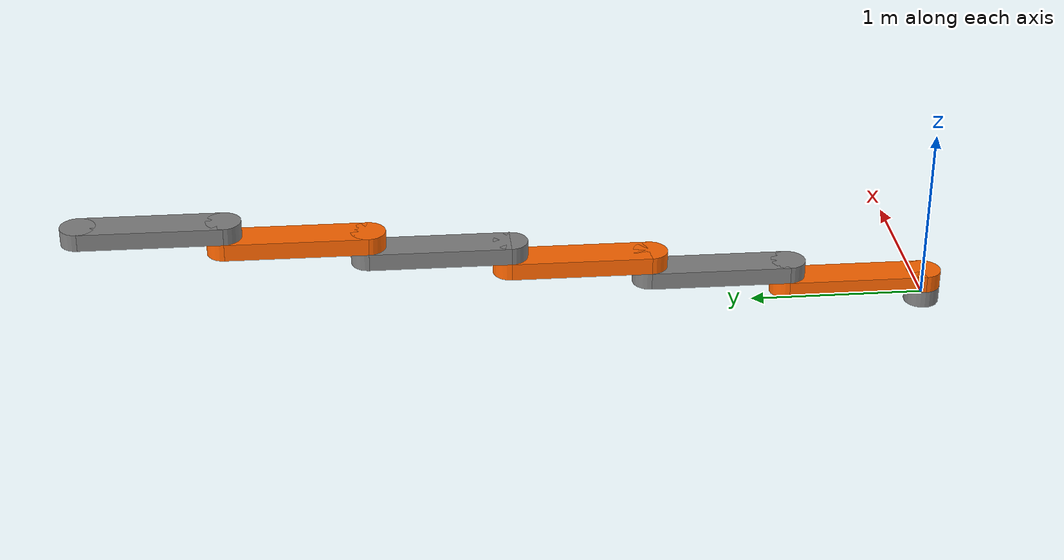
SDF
<?xml version="1.0"?>
<sdf version="1.7">
  <model name="6dofPlanar">
    <!-- Manipulatator base -->
    <link name="6dofPlanarBase">
      <pose>0 0 0 0 0 0</pose>
      <visual name="6dofPlanarBaseVisual">
        <geometry>
          <cylinder>
            <radius>0.1</radius>
            <length>0.1</length>
          </cylinder>
        </geometry>
        <material>
          <ambient>0.5 0.5 0.5 1</ambient>
          <diffuse>0.5 0.5 0.5 1</diffuse>
          <specular>0.5 0.5 0.5 1</specular>
          <emissive>0.5 0.5 0.5 1</emissive>
        </material>
      </visual>
      <collision name="6dofPlanarBaseCollision">
        <pose>0 0 0 0 0 0</pose>
        <geometry>
          <cylinder>
            <radius>0.1</radius>
            <length>0.1</length>
          </cylinder>
        </geometry>
      </collision>
    </link>

    <!-- First link  -->
    <link name="6dofPlanarLink1">
      <pose>0 0 0.1 0 0 0</pose>
      <visual name="6dofPlanarLink1Visual1">
        <pose>0 0 0 0 0 0</pose>
        <geometry>
          <cylinder>
            <radius>0.1</radius>
            <length>0.1</length>
          </cylinder>
        </geometry>
        <material>
          <ambient>1 0.4 0 1</ambient>
          <diffuse>1 0.4 0 1</diffuse>
          <specular>1 0.4 0 1</specular>
          <emissive>1 0.4 0 1</emissive>
        </material>
      </visual>
      <visual name="6dofPlanarLink1Visual2">
        <pose>0 0.4 0 0 0 0</pose>
        <geometry>
          <box>
            <size>0.2 0.8 0.1</size>
          </box>
        </geometry>
        <material>
          <ambient>1 0.4 0 1</ambient>
          <diffuse>1 0.4 0 1</diffuse>
          <specular>1 0.4 0 1</specular>
          <emissive>1 0.4 0 1</emissive>
        </material>
      </visual>
      <visual name="6dofPlanarLink1Visual3">
        <pose>0 0.8 0 0 0 0</pose>
        <geometry>
          <cylinder>
            <radius>0.1</radius>
            <length>0.1</length>
          </cylinder>
        </geometry>
        <material>
          <ambient>1 0.4 0 1</ambient>
          <diffuse>1 0.4 0 1</diffuse>
          <specular>1 0.4 0 1</specular>
          <emissive>1 0.4 0 1</emissive>
        </material>
      </visual>
      <collision name="6dofPlanarLink1Collision1">
        <pose>0 0 0 0 0 0</pose>
        <geometry>
          <cylinder>
            <radius>0.1</radius>
            <length>0.1</length>
          </cylinder>
        </geometry>
      </collision>
      <collision name="6dofPlanarLink1Collision2">
        <pose>0 0.4 0 0 0 0</pose>
        <geometry>
          <box>
            <size>0.2 0.8 0.1</size>
          </box>
        </geometry>
      </collision>
      <collision name="6dofPlanarLink1Collision3">
        <pose>0 0.8 0 0 0 0</pose>
        <geometry>
          <cylinder>
            <radius>0.1</radius>
            <length>0.1</length>
          </cylinder>
        </geometry>
      </collision>
    </link>

    <!-- First joint  -->
    <joint name="6dofPlanarJoint1" type="revolute">
      <parent>6dofPlanarBase</parent>
      <child>6dofPlanarLink1</child>
      <axis>
        <xyz>0 0 1</xyz>
        <limit>
          <lower>-3.14159</lower>
          <upper>3.14159</upper>
        </limit>
      </axis>
    </joint>

    <!-- Second link  -->
    <link name="6dofPlanarLink2">
      <pose>0 0.8 0.2 0 0 0</pose>
      <visual name="6dofPlanarLink2Visual1">
        <pose>0 0 0 0 0 0</pose>
        <geometry>
          <cylinder>
            <radius>0.1</radius>
            <length>0.1</length>
          </cylinder>
        </geometry>
        <material>
          <ambient>0.5 0.5 0.5 1</ambient>
          <diffuse>0.5 0.5 0.5 1</diffuse>
          <specular>0.5 0.5 0.5 1</specular>
          <emissive>0.5 0.5 0.5 1</emissive>
        </material>
      </visual>
      <visual name="6dofPlanarLink2Visual2">
        <pose>0 0.4 0 0 0 0</pose>
        <geometry>
          <box>
            <size>0.2 0.8 0.1</size>
          </box>
        </geometry>
        <material>
          <ambient>0.5 0.5 0.5 1</ambient>
          <diffuse>0.5 0.5 0.5 1</diffuse>
          <specular>0.5 0.5 0.5 1</specular>
          <emissive>0.5 0.5 0.5 1</emissive>
        </material>
      </visual>
      <visual name="6dofPlanarLink2Visual3">
        <pose>0 0.8 0 0 0 0</pose>
        <geometry>
          <cylinder>
            <radius>0.1</radius>
            <length>0.1</length>
          </cylinder>
        </geometry>
        <material>
          <ambient>0.5 0.5 0.5 1</ambient>
          <diffuse>0.5 0.5 0.5 1</diffuse>
          <specular>0.5 0.5 0.5 1</specular>
          <emissive>0.5 0.5 0.5 1</emissive>
        </material>
      </visual>
      <collision name="6dofPlanarLink2Collision1">
        <pose>0 0 0 0 0 0</pose>
        <geometry>
          <cylinder>
            <radius>0.1</radius>
            <length>0.1</length>
          </cylinder>
        </geometry>
      </collision>
      <collision name="6dofPlanarLink2Collision2">
        <pose>0 0.4 0 0 0 0</pose>
        <geometry>
          <box>
            <size>0.2 0.8 0.1</size>
          </box>
        </geometry>
      </collision>
      <collision name="6dofPlanarLink2Collision3">
        <pose>0 0.8 0 0 0 0</pose>
        <geometry>
          <cylinder>
            <radius>0.1</radius>
            <length>0.1</length>
          </cylinder>
        </geometry>
      </collision>
    </link>

    <!-- Second joint  -->
    <joint name="6dofPlanarJoint2" type="revolute">
      <parent>6dofPlanarLink1</parent>
      <child>6dofPlanarLink2</child>
      <axis>
        <xyz>0 0 1</xyz>
        <limit>
          <lower>-3.14159</lower>
          <upper>3.14159</upper>
        </limit>
      </axis>
    </joint>

    <!-- Third link  -->
    <link name="6dofPlanarLink3">
      <pose>0 1.6 0.3 0 0 0</pose>
      <visual name="6dofPlanarLink3Visual1">
        <pose>0 0 0 0 0 0</pose>
        <geometry>
          <cylinder>
            <radius>0.1</radius>
            <length>0.1</length>
          </cylinder>
        </geometry>
        <material>
          <ambient>1 0.4 0 1</ambient>
          <diffuse>1 0.4 0 1</diffuse>
          <specular>1 0.4 0 1</specular>
          <emissive>1 0.4 0 1</emissive>
        </material>
      </visual>
      <visual name="6dofPlanarLink3Visual2">
        <pose>0 0.4 0 0 0 0</pose>
        <geometry>
          <box>
            <size>0.2 0.8 0.1</size>
          </box>
        </geometry>
        <material>
          <ambient>1 0.4 0 1</ambient>
          <diffuse>1 0.4 0 1</diffuse>
          <specular>1 0.4 0 1</specular>
          <emissive>1 0.4 0 1</emissive>
        </material>
      </visual>
      <visual name="6dofPlanarLink3Visual3">
        <pose>0 0.8 0 0 0 0</pose>
        <geometry>
          <cylinder>
            <radius>0.1</radius>
            <length>0.1</length>
          </cylinder>
        </geometry>
        <material>
          <ambient>1 0.4 0 1</ambient>
          <diffuse>1 0.4 0 1</diffuse>
          <specular>1 0.4 0 1</specular>
          <emissive>1 0.4 0 1</emissive>
        </material>
      </visual>
      <collision name="6dofPlanarLink3Collision1">
        <pose>0 0 0 0 0 0</pose>
        <geometry>
          <cylinder>
            <radius>0.1</radius>
            <length>0.1</length>
          </cylinder>
        </geometry>
      </collision>
      <collision name="6dofPlanarLink3Collision2">
        <pose>0 0.4 0 0 0 0</pose>
        <geometry>
          <box>
            <size>0.2 0.8 0.1</size>
          </box>
        </geometry>
      </collision>
      <collision name="6dofPlanarLink3Collision3">
        <pose>0 0.8 0 0 0 0</pose>
        <geometry>
          <cylinder>
            <radius>0.1</radius>
            <length>0.1</length>
          </cylinder>
        </geometry>
      </collision>
    </link>

    <!-- Third joint  -->
    <joint name="6dofPlanarJoint3" type="revolute">
      <parent>6dofPlanarLink2</parent>
      <child>6dofPlanarLink3</child>
      <axis>
        <xyz>0 0 1</xyz>
        <limit>
          <lower>-3.14159</lower>
          <upper>3.14159</upper>
        </limit>
      </axis>
    </joint>

    <!-- Fourth link  -->
    <link name="6dofPlanarLink4">
      <pose>0 2.4 0.4 0 0 0</pose>
      <visual name="6dofPlanarLink4Visual1">
        <pose>0 0 0 0 0 0</pose>
        <geometry>
          <cylinder>
            <radius>0.1</radius>
            <length>0.1</length>
          </cylinder>
        </geometry>
        <material>
          <ambient>0.5 0.5 0.5 1</ambient>
          <diffuse>0.5 0.5 0.5 1</diffuse>
          <specular>0.5 0.5 0.5 1</specular>
          <emissive>0.5 0.5 0.5 1</emissive>
        </material>
      </visual>
      <visual name="6dofPlanarLink4Visual2">
        <pose>0 0.4 0 0 0 0</pose>
        <geometry>
          <box>
            <size>0.2 0.8 0.1</size>
          </box>
        </geometry>
        <material>
          <ambient>0.5 0.5 0.5 1</ambient>
          <diffuse>0.5 0.5 0.5 1</diffuse>
          <specular>0.5 0.5 0.5 1</specular>
          <emissive>0.5 0.5 0.5 1</emissive>
        </material>
      </visual>
      <visual name="6dofPlanarLink4Visual3">
        <pose>0 0.8 0 0 0 0</pose>
        <geometry>
          <cylinder>
            <radius>0.1</radius>
            <length>0.1</length>
          </cylinder>
        </geometry>
        <material>
          <ambient>0.5 0.5 0.5 1</ambient>
          <diffuse>0.5 0.5 0.5 1</diffuse>
          <specular>0.5 0.5 0.5 1</specular>
          <emissive>0.5 0.5 0.5 1</emissive>
        </material>
      </visual>
      <collision name="6dofPlanarLink4Collision1">
        <pose>0 0 0 0 0 0</pose>
        <geometry>
          <cylinder>
            <radius>0.1</radius>
            <length>0.1</length>
          </cylinder>
        </geometry>
      </collision>
      <collision name="6dofPlanarLink4Collision2">
        <pose>0 0.4 0 0 0 0</pose>
        <geometry>
          <box>
            <size>0.2 0.8 0.1</size>
          </box>
        </geometry>
      </collision>
      <collision name="6dofPlanarLink4Collision3">
        <pose>0 0.8 0 0 0 0</pose>
        <geometry>
          <cylinder>
            <radius>0.1</radius>
            <length>0.1</length>
          </cylinder>
        </geometry>
      </collision>
    </link>

    <!-- Fourth joint  -->
    <joint name="6dofPlanarJoint4" type="revolute">
      <parent>6dofPlanarLink3</parent>
      <child>6dofPlanarLink4</child>
      <axis>
        <xyz>0 0 1</xyz>
        <limit>
          <lower>-3.14159</lower>
          <upper>3.14159</upper>
        </limit>
      </axis>
    </joint>

    <!-- Fifth link  -->
    <link name="6dofPlanarLink5">
      <pose>0 3.2 0.5 0 0 0</pose>
      <visual name="6dofPlanarLink5Visual1">
        <pose>0 0 0 0 0 0</pose>
        <geometry>
          <cylinder>
            <radius>0.1</radius>
            <length>0.1</length>
          </cylinder>
        </geometry>
        <material>
          <ambient>1 0.4 0 1</ambient>
          <diffuse>1 0.4 0 1</diffuse>
          <specular>1 0.4 0 1</specular>
          <emissive>1 0.4 0 1</emissive>
        </material>
      </visual>
      <visual name="6dofPlanarLink5Visual2">
        <pose>0 0.4 0 0 0 0</pose>
        <geometry>
          <box>
            <size>0.2 0.8 0.1</size>
          </box>
        </geometry>
        <material>
          <ambient>1 0.4 0 1</ambient>
          <diffuse>1 0.4 0 1</diffuse>
          <specular>1 0.4 0 1</specular>
          <emissive>1 0.4 0 1</emissive>
        </material>
      </visual>
      <visual name="6dofPlanarLink5Visual3">
        <pose>0 0.8 0 0 0 0</pose>
        <geometry>
          <cylinder>
            <radius>0.1</radius>
            <length>0.1</length>
          </cylinder>
        </geometry>
        <material>
          <ambient>1 0.4 0 1</ambient>
          <diffuse>1 0.4 0 1</diffuse>
          <specular>1 0.4 0 1</specular>
          <emissive>1 0.4 0 1</emissive>
        </material>
      </visual>
      <collision name="6dofPlanarLink5Collision1">
        <pose>0 0 0 0 0 0</pose>
        <geometry>
          <cylinder>
            <radius>0.1</radius>
            <length>0.1</length>
          </cylinder>
        </geometry>
      </collision>
      <collision name="6dofPlanarLink5Collision2">
        <pose>0 0.4 0 0 0 0</pose>
        <geometry>
          <box>
            <size>0.2 0.8 0.1</size>
          </box>
        </geometry>
      </collision>
      <collision name="6dofPlanarLink5Collision3">
        <pose>0 0.8 0 0 0 0</pose>
        <geometry>
          <cylinder>
            <radius>0.1</radius>
            <length>0.1</length>
          </cylinder>
        </geometry>
      </collision>
    </link>

    <!-- Fifth joint  -->
    <joint name="6dofPlanarJoint5" type="revolute">
      <parent>6dofPlanarLink4</parent>
      <child>6dofPlanarLink5</child>
      <axis>
        <xyz>0 0 1</xyz>
        <limit>
          <lower>-3.14159</lower>
          <upper>3.14159</upper>
        </limit>
      </axis>
    </joint>

    <!-- Sixth link  -->
    <link name="6dofPlanarLink6">
      <pose>0 4.0 0.6 0 0 0</pose>
      <visual name="6dofPlanarLink6Visual1">
        <pose>0 0 0 0 0 0</pose>
        <geometry>
          <cylinder>
            <radius>0.1</radius>
            <length>0.1</length>
          </cylinder>
        </geometry>
        <material>
          <ambient>0.5 0.5 0.5 1</ambient>
          <diffuse>0.5 0.5 0.5 1</diffuse>
          <specular>0.5 0.5 0.5 1</specular>
          <emissive>0.5 0.5 0.5 1</emissive>
        </material>
      </visual>
      <visual name="6dofPlanarLink6Visual2">
        <pose>0 0.4 0 0 0 0</pose>
        <geometry>
          <box>
            <size>0.2 0.8 0.1</size>
          </box>
        </geometry>
        <material>
          <ambient>0.5 0.5 0.5 1</ambient>
          <diffuse>0.5 0.5 0.5 1</diffuse>
          <specular>0.5 0.5 0.5 1</specular>
          <emissive>0.5 0.5 0.5 1</emissive>
        </material>
      </visual>
      <visual name="6dofPlanarLink6Visual3">
        <pose>0 0.8 0 0 0 0</pose>
        <geometry>
          <cylinder>
            <radius>0.1</radius>
            <length>0.1</length>
          </cylinder>
        </geometry>
        <material>
          <ambient>0.5 0.5 0.5 1</ambient>
          <diffuse>0.5 0.5 0.5 1</diffuse>
          <specular>0.5 0.5 0.5 1</specular>
          <emissive>0.5 0.5 0.5 1</emissive>
        </material>
      </visual>
      <collision name="6dofPlanarLink6Collision1">
        <pose>0 0 0 0 0 0</pose>
        <geometry>
          <cylinder>
            <radius>0.1</radius>
            <length>0.1</length>
          </cylinder>
        </geometry>
      </collision>
      <collision name="6dofPlanarLink6Collision2">
        <pose>0 0.4 0 0 0 0</pose>
        <geometry>
          <box>
            <size>0.2 0.8 0.1</size>
          </box>
        </geometry>
      </collision>
      <collision name="6dofPlanarLink6Collision3">
        <pose>0 0.8 0 0 0 0</pose>
        <geometry>
          <cylinder>
            <radius>0.1</radius>
            <length>0.1</length>
          </cylinder>
        </geometry>
      </collision>
    </link>

    <!-- Sixth joint  -->
    <joint name="6dofPlanarJoint6" type="revolute">
      <parent>6dofPlanarLink5</parent>
      <child>6dofPlanarLink6</child>
      <axis>
        <xyz>0 0 1</xyz>
        <limit>
          <lower>-3.14159</lower>
          <upper>3.14159</upper>
        </limit>
      </axis>
    </joint>

    <!-- Manipulatator end effector -->
    <link name="6dofPlanarEndEffector">
      <pose>0 4.8 0.6 0 0 0</pose>
    </link>

    <!-- End effector joint  -->
    <joint name="6dofPlanarJointEndEffector" type="fixed">
      <parent>6dofPlanarLink6</parent>
      <child>6dofPlanarEndEffector</child>
    </joint>
  </model>
</sdf>
